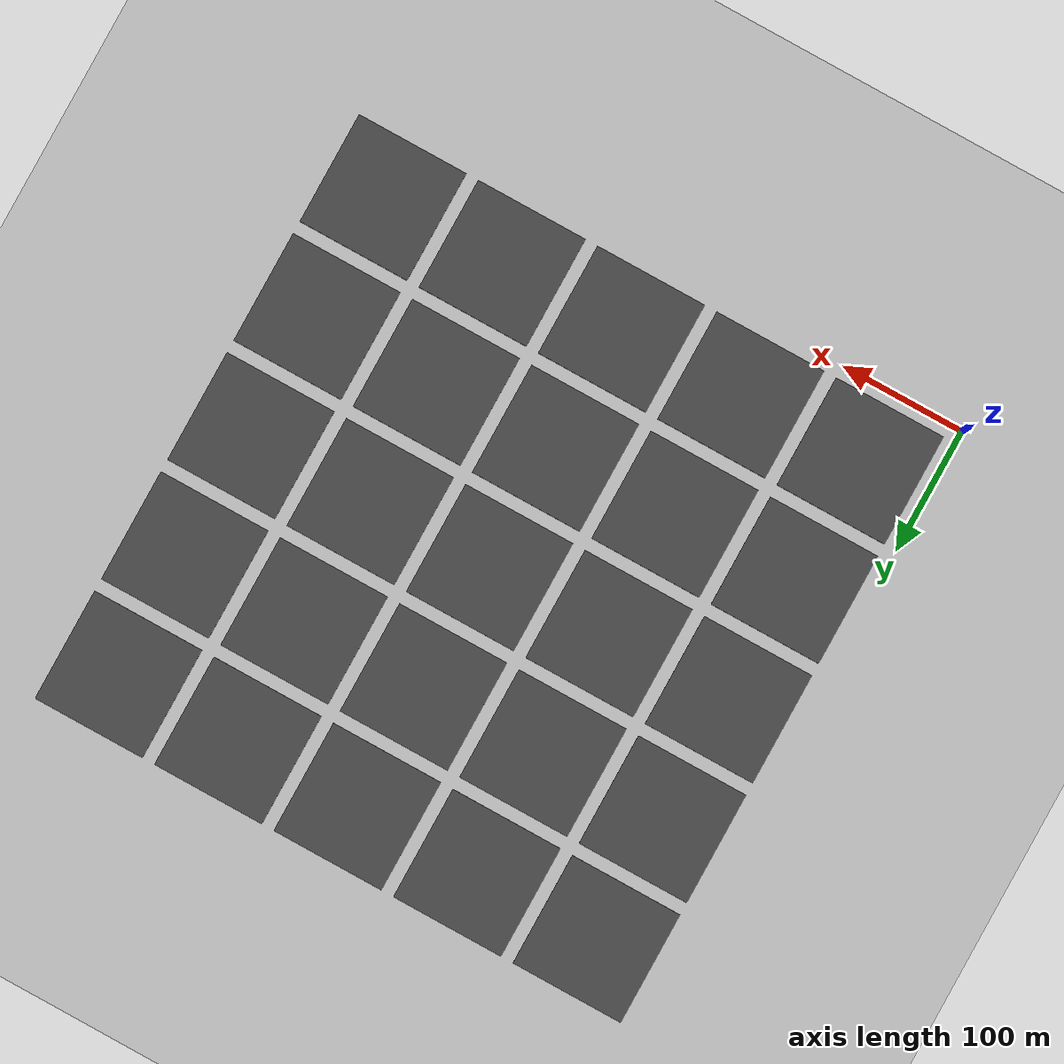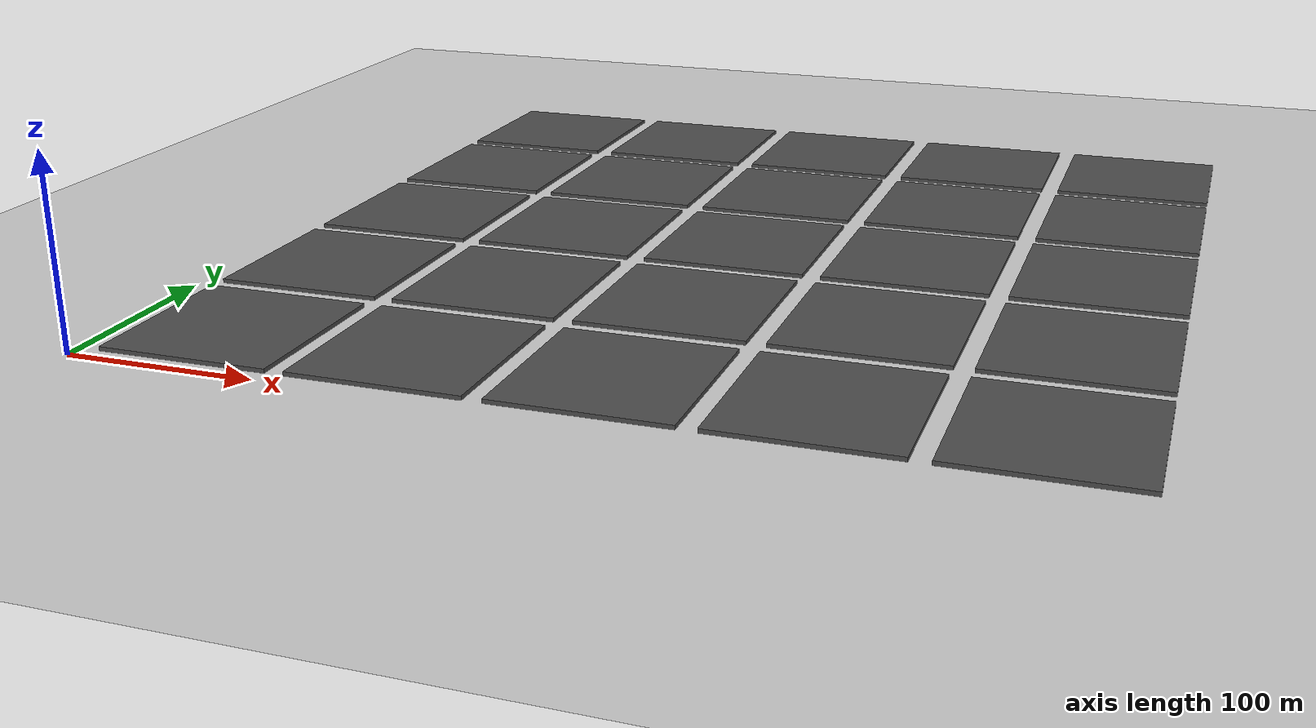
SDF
<sdf version="1.5">
 <world name="default">
  <model name="ground_plane">
   <static>1</static>
   <link name="link">
    <collision name="collision">
     <geometry><plane><normal>0 0 1</normal><size>10000 10000</size></plane></geometry>
     <surface>
      <contact><collide_bitmask>65535</collide_bitmask></contact>
      <friction><ode><mu>100</mu><mu2>50</mu2></ode></friction>
     </surface>
    </collision>
    <visual name="visual">
     <cast_shadows>0</cast_shadows>
     <geometry><plane><normal>0 0 1</normal><size>10000 10000</size></plane></geometry>
     <material>
      <script><uri>file://media/materials/scripts/gazebo.material</uri><name>Gazebo/Grey</name></script>
     </material>
    </visual>
   </link>
  </model>
  <light name="sun" type="directional">
   <pose>0 0 10 0 -0 0</pose>
   <diffuse>0.8 0.8 0.8 1</diffuse>
   <specular>0.2 0.2 0.2 1</specular>
   <attenuation>
    <range>1000</range>
    <constant>0.9</constant>
    <linear>0.01</linear>
    <quadratic>0.001</quadratic>
   </attenuation>
   <direction>-0.5 0.1 -0.9</direction>
  </light>
  <model name="asphalt_plane_0_0">
   <pose>55 55 0 0 -0 0</pose>
   <static>1</static>
   <link name="link">
    <collision name="collision"><geometry><box><size>90 90 3</size></box></geometry></collision>
    <visual name="visual">
     <cast_shadows>0</cast_shadows>
     <geometry><box><size>90 90 3</size></box></geometry>
     <material>
      <script>
       <uri>models/asphalt_plane/materials/scripts</uri>
       <uri>models/asphalt_plane/materials/textures</uri>
       <name>vrc/asphalt</name>
      </script>
     </material>
    </visual>
   </link>
  </model>
  <model name="asphalt_plane_1_0">
   <pose>155 55 0 0 -0 0</pose>
   <static>1</static>
   <link name="link">
    <collision name="collision"><geometry><box><size>90 90 3</size></box></geometry></collision>
    <visual name="visual">
     <cast_shadows>0</cast_shadows>
     <geometry><box><size>90 90 3</size></box></geometry>
     <material>
      <script>
       <uri>models/asphalt_plane/materials/scripts</uri>
       <uri>models/asphalt_plane/materials/textures</uri>
       <name>vrc/asphalt</name>
      </script>
     </material>
    </visual>
   </link>
  </model>
  <model name="asphalt_plane_2_0">
   <pose>255 55 0 0 -0 0</pose>
   <static>1</static>
   <link name="link">
    <collision name="collision"><geometry><box><size>90 90 3</size></box></geometry></collision>
    <visual name="visual">
     <cast_shadows>0</cast_shadows>
     <geometry><box><size>90 90 3</size></box></geometry>
     <material>
      <script>
       <uri>models/asphalt_plane/materials/scripts</uri>
       <uri>models/asphalt_plane/materials/textures</uri>
       <name>vrc/asphalt</name>
      </script>
     </material>
    </visual>
   </link>
  </model>
  <model name="asphalt_plane_3_0">
   <pose>355 55 0 0 -0 0</pose>
   <static>1</static>
   <link name="link">
    <collision name="collision"><geometry><box><size>90 90 3</size></box></geometry></collision>
    <visual name="visual">
     <cast_shadows>0</cast_shadows>
     <geometry><box><size>90 90 3</size></box></geometry>
     <material>
      <script>
       <uri>models/asphalt_plane/materials/scripts</uri>
       <uri>models/asphalt_plane/materials/textures</uri>
       <name>vrc/asphalt</name>
      </script>
     </material>
    </visual>
   </link>
  </model>
  <model name="asphalt_plane_4_0">
   <pose>455 55 0 0 -0 0</pose>
   <static>1</static>
   <link name="link">
    <collision name="collision"><geometry><box><size>90 90 3</size></box></geometry></collision>
    <visual name="visual">
     <cast_shadows>0</cast_shadows>
     <geometry><box><size>90 90 3</size></box></geometry>
     <material>
      <script>
       <uri>models/asphalt_plane/materials/scripts</uri>
       <uri>models/asphalt_plane/materials/textures</uri>
       <name>vrc/asphalt</name>
      </script>
     </material>
    </visual>
   </link>
  </model>
  <model name="asphalt_plane_0_1">
   <pose>55 155 0 0 -0 0</pose>
   <static>1</static>
   <link name="link">
    <collision name="collision"><geometry><box><size>90 90 3</size></box></geometry></collision>
    <visual name="visual">
     <cast_shadows>0</cast_shadows>
     <geometry><box><size>90 90 3</size></box></geometry>
     <material>
      <script>
       <uri>models/asphalt_plane/materials/scripts</uri>
       <uri>models/asphalt_plane/materials/textures</uri>
       <name>vrc/asphalt</name>
      </script>
     </material>
    </visual>
   </link>
  </model>
  <model name="asphalt_plane_1_1">
   <pose>155 155 0 0 -0 0</pose>
   <static>1</static>
   <link name="link">
    <collision name="collision"><geometry><box><size>90 90 3</size></box></geometry></collision>
    <visual name="visual">
     <cast_shadows>0</cast_shadows>
     <geometry><box><size>90 90 3</size></box></geometry>
     <material>
      <script>
       <uri>models/asphalt_plane/materials/scripts</uri>
       <uri>models/asphalt_plane/materials/textures</uri>
       <name>vrc/asphalt</name>
      </script>
     </material>
    </visual>
   </link>
  </model>
  <model name="asphalt_plane_2_1">
   <pose>255 155 0 0 -0 0</pose>
   <static>1</static>
   <link name="link">
    <collision name="collision"><geometry><box><size>90 90 3</size></box></geometry></collision>
    <visual name="visual">
     <cast_shadows>0</cast_shadows>
     <geometry><box><size>90 90 3</size></box></geometry>
     <material>
      <script>
       <uri>models/asphalt_plane/materials/scripts</uri>
       <uri>models/asphalt_plane/materials/textures</uri>
       <name>vrc/asphalt</name>
      </script>
     </material>
    </visual>
   </link>
  </model>
  <model name="asphalt_plane_3_1">
   <pose>355 155 0 0 -0 0</pose>
   <static>1</static>
   <link name="link">
    <collision name="collision"><geometry><box><size>90 90 3</size></box></geometry></collision>
    <visual name="visual">
     <cast_shadows>0</cast_shadows>
     <geometry><box><size>90 90 3</size></box></geometry>
     <material>
      <script>
       <uri>models/asphalt_plane/materials/scripts</uri>
       <uri>models/asphalt_plane/materials/textures</uri>
       <name>vrc/asphalt</name>
      </script>
     </material>
    </visual>
   </link>
  </model>
  <model name="asphalt_plane_4_1">
   <pose>455 155 0 0 -0 0</pose>
   <static>1</static>
   <link name="link">
    <collision name="collision"><geometry><box><size>90 90 3</size></box></geometry></collision>
    <visual name="visual">
     <cast_shadows>0</cast_shadows>
     <geometry><box><size>90 90 3</size></box></geometry>
     <material>
      <script>
       <uri>models/asphalt_plane/materials/scripts</uri>
       <uri>models/asphalt_plane/materials/textures</uri>
       <name>vrc/asphalt</name>
      </script>
     </material>
    </visual>
   </link>
  </model>
  <model name="asphalt_plane_0_2">
   <pose>55 255 0 0 -0 0</pose>
   <static>1</static>
   <link name="link">
    <collision name="collision"><geometry><box><size>90 90 3</size></box></geometry></collision>
    <visual name="visual">
     <cast_shadows>0</cast_shadows>
     <geometry><box><size>90 90 3</size></box></geometry>
     <material>
      <script>
       <uri>models/asphalt_plane/materials/scripts</uri>
       <uri>models/asphalt_plane/materials/textures</uri>
       <name>vrc/asphalt</name>
      </script>
     </material>
    </visual>
   </link>
  </model>
  <model name="asphalt_plane_1_2">
   <pose>155 255 0 0 -0 0</pose>
   <static>1</static>
   <link name="link">
    <collision name="collision"><geometry><box><size>90 90 3</size></box></geometry></collision>
    <visual name="visual">
     <cast_shadows>0</cast_shadows>
     <geometry><box><size>90 90 3</size></box></geometry>
     <material>
      <script>
       <uri>models/asphalt_plane/materials/scripts</uri>
       <uri>models/asphalt_plane/materials/textures</uri>
       <name>vrc/asphalt</name>
      </script>
     </material>
    </visual>
   </link>
  </model>
  <model name="asphalt_plane_2_2">
   <pose>255 255 0 0 -0 0</pose>
   <static>1</static>
   <link name="link">
    <collision name="collision"><geometry><box><size>90 90 3</size></box></geometry></collision>
    <visual name="visual">
     <cast_shadows>0</cast_shadows>
     <geometry><box><size>90 90 3</size></box></geometry>
     <material>
      <script>
       <uri>models/asphalt_plane/materials/scripts</uri>
       <uri>models/asphalt_plane/materials/textures</uri>
       <name>vrc/asphalt</name>
      </script>
     </material>
    </visual>
   </link>
  </model>
  <model name="asphalt_plane_3_2">
   <pose>355 255 0 0 -0 0</pose>
   <static>1</static>
   <link name="link">
    <collision name="collision"><geometry><box><size>90 90 3</size></box></geometry></collision>
    <visual name="visual">
     <cast_shadows>0</cast_shadows>
     <geometry><box><size>90 90 3</size></box></geometry>
     <material>
      <script>
       <uri>models/asphalt_plane/materials/scripts</uri>
       <uri>models/asphalt_plane/materials/textures</uri>
       <name>vrc/asphalt</name>
      </script>
     </material>
    </visual>
   </link>
  </model>
  <model name="asphalt_plane_4_2">
   <pose>455 255 0 0 -0 0</pose>
   <static>1</static>
   <link name="link">
    <collision name="collision"><geometry><box><size>90 90 3</size></box></geometry></collision>
    <visual name="visual">
     <cast_shadows>0</cast_shadows>
     <geometry><box><size>90 90 3</size></box></geometry>
     <material>
      <script>
       <uri>models/asphalt_plane/materials/scripts</uri>
       <uri>models/asphalt_plane/materials/textures</uri>
       <name>vrc/asphalt</name>
      </script>
     </material>
    </visual>
   </link>
  </model>
  <model name="asphalt_plane_0_3">
   <pose>55 355 0 0 -0 0</pose>
   <static>1</static>
   <link name="link">
    <collision name="collision"><geometry><box><size>90 90 3</size></box></geometry></collision>
    <visual name="visual">
     <cast_shadows>0</cast_shadows>
     <geometry><box><size>90 90 3</size></box></geometry>
     <material>
      <script>
       <uri>models/asphalt_plane/materials/scripts</uri>
       <uri>models/asphalt_plane/materials/textures</uri>
       <name>vrc/asphalt</name>
      </script>
     </material>
    </visual>
   </link>
  </model>
  <model name="asphalt_plane_1_3">
   <pose>155 355 0 0 -0 0</pose>
   <static>1</static>
   <link name="link">
    <collision name="collision"><geometry><box><size>90 90 3</size></box></geometry></collision>
    <visual name="visual">
     <cast_shadows>0</cast_shadows>
     <geometry><box><size>90 90 3</size></box></geometry>
     <material>
      <script>
       <uri>models/asphalt_plane/materials/scripts</uri>
       <uri>models/asphalt_plane/materials/textures</uri>
       <name>vrc/asphalt</name>
      </script>
     </material>
    </visual>
   </link>
  </model>
  <model name="asphalt_plane_2_3">
   <pose>255 355 0 0 -0 0</pose>
   <static>1</static>
   <link name="link">
    <collision name="collision"><geometry><box><size>90 90 3</size></box></geometry></collision>
    <visual name="visual">
     <cast_shadows>0</cast_shadows>
     <geometry><box><size>90 90 3</size></box></geometry>
     <material>
      <script>
       <uri>models/asphalt_plane/materials/scripts</uri>
       <uri>models/asphalt_plane/materials/textures</uri>
       <name>vrc/asphalt</name>
      </script>
     </material>
    </visual>
   </link>
  </model>
  <model name="asphalt_plane_3_3">
   <pose>355 355 0 0 -0 0</pose>
   <static>1</static>
   <link name="link">
    <collision name="collision"><geometry><box><size>90 90 3</size></box></geometry></collision>
    <visual name="visual">
     <cast_shadows>0</cast_shadows>
     <geometry><box><size>90 90 3</size></box></geometry>
     <material>
      <script>
       <uri>models/asphalt_plane/materials/scripts</uri>
       <uri>models/asphalt_plane/materials/textures</uri>
       <name>vrc/asphalt</name>
      </script>
     </material>
    </visual>
   </link>
  </model>
  <model name="asphalt_plane_4_3">
   <pose>455 355 0 0 -0 0</pose>
   <static>1</static>
   <link name="link">
    <collision name="collision"><geometry><box><size>90 90 3</size></box></geometry></collision>
    <visual name="visual">
     <cast_shadows>0</cast_shadows>
     <geometry><box><size>90 90 3</size></box></geometry>
     <material>
      <script>
       <uri>models/asphalt_plane/materials/scripts</uri>
       <uri>models/asphalt_plane/materials/textures</uri>
       <name>vrc/asphalt</name>
      </script>
     </material>
    </visual>
   </link>
  </model>
  <model name="asphalt_plane_0_4">
   <pose>55 455 0 0 -0 0</pose>
   <static>1</static>
   <link name="link">
    <collision name="collision"><geometry><box><size>90 90 3</size></box></geometry></collision>
    <visual name="visual">
     <cast_shadows>0</cast_shadows>
     <geometry><box><size>90 90 3</size></box></geometry>
     <material>
      <script>
       <uri>models/asphalt_plane/materials/scripts</uri>
       <uri>models/asphalt_plane/materials/textures</uri>
       <name>vrc/asphalt</name>
      </script>
     </material>
    </visual>
   </link>
  </model>
  <model name="asphalt_plane_1_4">
   <pose>155 455 0 0 -0 0</pose>
   <static>1</static>
   <link name="link">
    <collision name="collision"><geometry><box><size>90 90 3</size></box></geometry></collision>
    <visual name="visual">
     <cast_shadows>0</cast_shadows>
     <geometry><box><size>90 90 3</size></box></geometry>
     <material>
      <script>
       <uri>models/asphalt_plane/materials/scripts</uri>
       <uri>models/asphalt_plane/materials/textures</uri>
       <name>vrc/asphalt</name>
      </script>
     </material>
    </visual>
   </link>
  </model>
  <model name="asphalt_plane_2_4">
   <pose>255 455 0 0 -0 0</pose>
   <static>1</static>
   <link name="link">
    <collision name="collision"><geometry><box><size>90 90 3</size></box></geometry></collision>
    <visual name="visual">
     <cast_shadows>0</cast_shadows>
     <geometry><box><size>90 90 3</size></box></geometry>
     <material>
      <script>
       <uri>models/asphalt_plane/materials/scripts</uri>
       <uri>models/asphalt_plane/materials/textures</uri>
       <name>vrc/asphalt</name>
      </script>
     </material>
    </visual>
   </link>
  </model>
  <model name="asphalt_plane_3_4">
   <pose>355 455 0 0 -0 0</pose>
   <static>1</static>
   <link name="link">
    <collision name="collision"><geometry><box><size>90 90 3</size></box></geometry></collision>
    <visual name="visual">
     <cast_shadows>0</cast_shadows>
     <geometry><box><size>90 90 3</size></box></geometry>
     <material>
      <script>
       <uri>models/asphalt_plane/materials/scripts</uri>
       <uri>models/asphalt_plane/materials/textures</uri>
       <name>vrc/asphalt</name>
      </script>
     </material>
    </visual>
   </link>
  </model>
  <model name="asphalt_plane_4_4">
   <pose>455 455 0 0 -0 0</pose>
   <static>1</static>
   <link name="link">
    <collision name="collision"><geometry><box><size>90 90 3</size></box></geometry></collision>
    <visual name="visual">
     <cast_shadows>0</cast_shadows>
     <geometry><box><size>90 90 3</size></box></geometry>
     <material>
      <script>
       <uri>models/asphalt_plane/materials/scripts</uri>
       <uri>models/asphalt_plane/materials/textures</uri>
       <name>vrc/asphalt</name>
      </script>
     </material>
    </visual>
   </link>
  </model>
  <physics name="default_physics" default="0" type="ode">
   <max_step_size>0.001</max_step_size>
   <real_time_factor>1</real_time_factor>
   <real_time_update_rate>1000</real_time_update_rate>
   <gravity>0 0 -9.8</gravity>
   <magnetic_field>6e-06 2.3e-05 -4.2e-05</magnetic_field>
  </physics>
  <scene><ambient>0.4 0.4 0.4 1</ambient><background>0.7 0.7 0.7 1</background><shadows>1</shadows></scene>
  <audio><device>default</device></audio>
  <spherical_coordinates>
   <surface_model>EARTH_WGS84</surface_model>
   <latitude_deg>0</latitude_deg>
   <longitude_deg>0</longitude_deg>
   <elevation>0</elevation>
   <heading_deg>0</heading_deg>
  </spherical_coordinates>
 </world>
</sdf>
